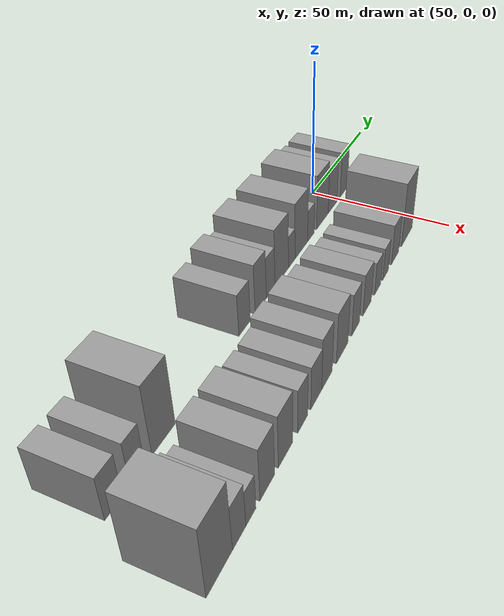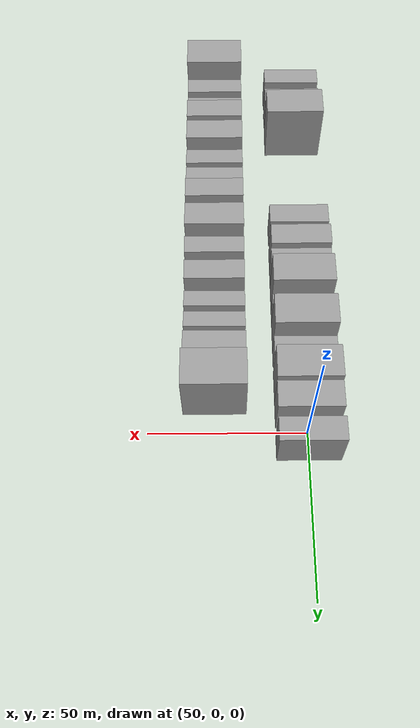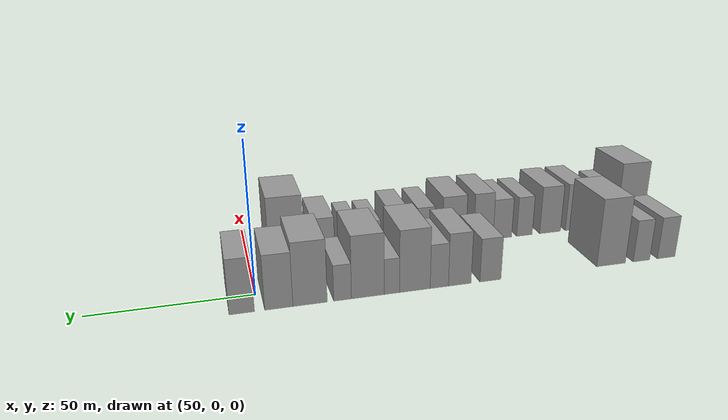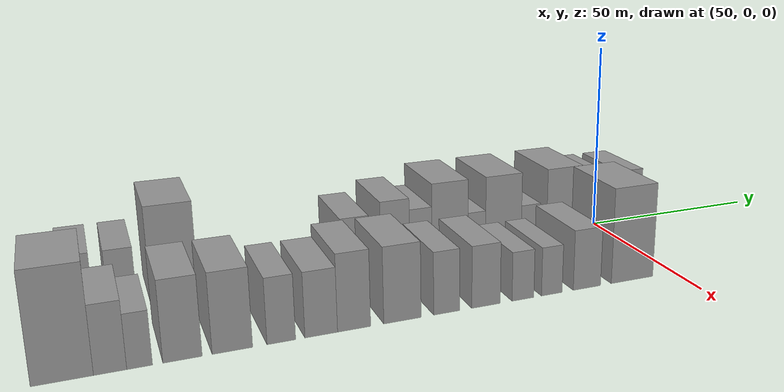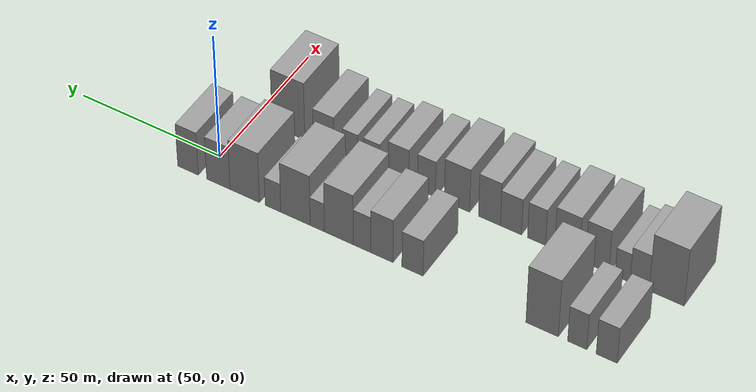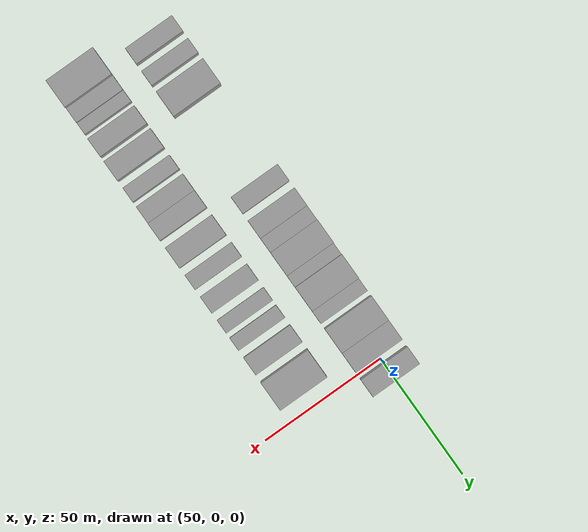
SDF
<sdf version="1.6">
 <world name="default">
  <model name="building_17">
   <static>1</static>
   <pose>50.0000 -137.5323 0 0.000000 0.000000 0.000000</pose>
   <link name="link">
    <pose>0 0 7.50 0 0 0</pose>
    <collision name="collision"><geometry><box><size>20.0000 6.7847 15.0000</size></box></geometry></collision>
    <visual name="visual">
     <cast_shadows>0</cast_shadows>
     <geometry><box><size>20.0000 6.7847 15.0000</size></box></geometry>
     <material>
      <script>
       <uri>model://grey_wall/materials/scripts</uri>
       <uri>model://grey_wall/materials/textures</uri>
       <name>vrc/grey_wall</name>
      </script>
     </material>
    </visual>
   </link>
  </model>
  <model name="building_18">
   <static>1</static>
   <pose>50.0000 -128.0251 0 0.000000 0.000000 0.000000</pose>
   <link name="link">
    <pose>0 0 7.50 0 0 0</pose>
    <collision name="collision"><geometry><box><size>20.0000 6.2296 15.0000</size></box></geometry></collision>
    <visual name="visual">
     <cast_shadows>0</cast_shadows>
     <geometry><box><size>20.0000 6.2296 15.0000</size></box></geometry>
     <material>
      <script>
       <uri>model://grey_wall/materials/scripts</uri>
       <uri>model://grey_wall/materials/textures</uri>
       <name>vrc/grey_wall</name>
      </script>
     </material>
    </visual>
   </link>
  </model>
  <model name="building_19">
   <static>1</static>
   <pose>50.0000 -116.5922 0 0.000000 0.000000 0.000000</pose>
   <link name="link">
    <pose>0 0 12.00 0 0 0</pose>
    <collision name="collision"><geometry><box><size>20.0000 10.6363 24.0000</size></box></geometry></collision>
    <visual name="visual">
     <cast_shadows>0</cast_shadows>
     <geometry><box><size>20.0000 10.6363 24.0000</size></box></geometry>
     <material>
      <script>
       <uri>model://grey_wall/materials/scripts</uri>
       <uri>model://grey_wall/materials/textures</uri>
       <name>vrc/grey_wall</name>
      </script>
     </material>
    </visual>
   </link>
  </model>
  <model name="building_20">
   <static>1</static>
   <pose>50.0000 -73.4680 0 0.000000 0.000000 0.000000</pose>
   <link name="link">
    <pose>0 0 7.50 0 0 0</pose>
    <collision name="collision"><geometry><box><size>20.0000 7.2040 15.0000</size></box></geometry></collision>
    <visual name="visual">
     <cast_shadows>0</cast_shadows>
     <geometry><box><size>20.0000 7.2040 15.0000</size></box></geometry>
     <material>
      <script>
       <uri>model://grey_wall/materials/scripts</uri>
       <uri>model://grey_wall/materials/textures</uri>
       <name>vrc/grey_wall</name>
      </script>
     </material>
    </visual>
   </link>
  </model>
  <model name="building_21">
   <static>1</static>
   <pose>50.0000 -63.0588 0 0.000000 0.000000 0.000000</pose>
   <link name="link">
    <pose>0 0 9.00 0 0 0</pose>
    <collision name="collision"><geometry><box><size>20.0000 7.6144 18.0000</size></box></geometry></collision>
    <visual name="visual">
     <cast_shadows>0</cast_shadows>
     <geometry><box><size>20.0000 7.6144 18.0000</size></box></geometry>
     <material>
      <script>
       <uri>model://grey_wall/materials/scripts</uri>
       <uri>model://grey_wall/materials/textures</uri>
       <name>vrc/grey_wall</name>
      </script>
     </material>
    </visual>
   </link>
  </model>
  <model name="building_22">
   <static>1</static>
   <pose>50.0000 -56.2513 0 0.000000 0.000000 0.000000</pose>
   <link name="link">
    <pose>0 0 7.50 0 0 0</pose>
    <collision name="collision"><geometry><box><size>20.0000 6.0006 15.0000</size></box></geometry></collision>
    <visual name="visual">
     <cast_shadows>0</cast_shadows>
     <geometry><box><size>20.0000 6.0006 15.0000</size></box></geometry>
     <material>
      <script>
       <uri>model://grey_wall/materials/scripts</uri>
       <uri>model://grey_wall/materials/textures</uri>
       <name>vrc/grey_wall</name>
      </script>
     </material>
    </visual>
   </link>
  </model>
  <model name="building_23">
   <static>1</static>
   <pose>50.0000 -48.2686 0 0.000000 0.000000 0.000000</pose>
   <link name="link">
    <pose>0 0 10.50 0 0 0</pose>
    <collision name="collision"><geometry><box><size>20.0000 9.9647 21.0000</size></box></geometry></collision>
    <visual name="visual">
     <cast_shadows>0</cast_shadows>
     <geometry><box><size>20.0000 9.9647 21.0000</size></box></geometry>
     <material>
      <script>
       <uri>model://grey_wall/materials/scripts</uri>
       <uri>model://grey_wall/materials/textures</uri>
       <name>vrc/grey_wall</name>
      </script>
     </material>
    </visual>
   </link>
  </model>
  <model name="building_24">
   <static>1</static>
   <pose>50.0000 -40.8244 0 0.000000 0.000000 0.000000</pose>
   <link name="link">
    <pose>0 0 6.00 0 0 0</pose>
    <collision name="collision"><geometry><box><size>20.0000 4.9237 12.0000</size></box></geometry></collision>
    <visual name="visual">
     <cast_shadows>0</cast_shadows>
     <geometry><box><size>20.0000 4.9237 12.0000</size></box></geometry>
     <material>
      <script>
       <uri>model://grey_wall/materials/scripts</uri>
       <uri>model://grey_wall/materials/textures</uri>
       <name>vrc/grey_wall</name>
      </script>
     </material>
    </visual>
   </link>
  </model>
  <model name="building_25">
   <static>1</static>
   <pose>50.0000 -33.2198 0 0.000000 0.000000 0.000000</pose>
   <link name="link">
    <pose>0 0 10.50 0 0 0</pose>
    <collision name="collision"><geometry><box><size>20.0000 10.2856 21.0000</size></box></geometry></collision>
    <visual name="visual">
     <cast_shadows>0</cast_shadows>
     <geometry><box><size>20.0000 10.2856 21.0000</size></box></geometry>
     <material>
      <script>
       <uri>model://grey_wall/materials/scripts</uri>
       <uri>model://grey_wall/materials/textures</uri>
       <name>vrc/grey_wall</name>
      </script>
     </material>
    </visual>
   </link>
  </model>
  <model name="building_26">
   <static>1</static>
   <pose>50.0000 -25.3277 0 0.000000 0.000000 0.000000</pose>
   <link name="link">
    <pose>0 0 6.00 0 0 0</pose>
    <collision name="collision"><geometry><box><size>20.0000 5.4986 12.0000</size></box></geometry></collision>
    <visual name="visual">
     <cast_shadows>0</cast_shadows>
     <geometry><box><size>20.0000 5.4986 12.0000</size></box></geometry>
     <material>
      <script>
       <uri>model://grey_wall/materials/scripts</uri>
       <uri>model://grey_wall/materials/textures</uri>
       <name>vrc/grey_wall</name>
      </script>
     </material>
    </visual>
   </link>
  </model>
  <model name="building_27">
   <static>1</static>
   <pose>50.0000 -15.3713 0 0.000000 0.000000 0.000000</pose>
   <link name="link">
    <pose>0 0 10.50 0 0 0</pose>
    <collision name="collision"><geometry><box><size>20.0000 10.4143 21.0000</size></box></geometry></collision>
    <visual name="visual">
     <cast_shadows>0</cast_shadows>
     <geometry><box><size>20.0000 10.4143 21.0000</size></box></geometry>
     <material>
      <script>
       <uri>model://grey_wall/materials/scripts</uri>
       <uri>model://grey_wall/materials/textures</uri>
       <name>vrc/grey_wall</name>
      </script>
     </material>
    </visual>
   </link>
  </model>
  <model name="building_28">
   <static>1</static>
   <pose>50.0000 -5.9716 0 0.000000 0.000000 0.000000</pose>
   <link name="link">
    <pose>0 0 9.00 0 0 0</pose>
    <collision name="collision"><geometry><box><size>20.0000 8.3850 18.0000</size></box></geometry></collision>
    <visual name="visual">
     <cast_shadows>0</cast_shadows>
     <geometry><box><size>20.0000 8.3850 18.0000</size></box></geometry>
     <material>
      <script>
       <uri>model://grey_wall/materials/scripts</uri>
       <uri>model://grey_wall/materials/textures</uri>
       <name>vrc/grey_wall</name>
      </script>
     </material>
    </visual>
   </link>
  </model>
  <model name="building_29">
   <static>1</static>
   <pose>50.0000 4.9267 0 0.000000 0.000000 0.000000</pose>
   <link name="link">
    <pose>0 0 9.00 0 0 0</pose>
    <collision name="collision"><geometry><box><size>20.0000 7.4116 18.0000</size></box></geometry></collision>
    <visual name="visual">
     <cast_shadows>0</cast_shadows>
     <geometry><box><size>20.0000 7.4116 18.0000</size></box></geometry>
     <material>
      <script>
       <uri>model://grey_wall/materials/scripts</uri>
       <uri>model://grey_wall/materials/textures</uri>
       <name>vrc/grey_wall</name>
      </script>
     </material>
    </visual>
   </link>
  </model>
  <model name="building_71">
   <static>1</static>
   <pose>79.0000 -141.5311 0 0.000000 0.000000 0.000000</pose>
   <link name="link">
    <pose>0 0 12.00 0 0 0</pose>
    <collision name="collision"><geometry><box><size>20.0000 11.4328 24.0000</size></box></geometry></collision>
    <visual name="visual">
     <cast_shadows>0</cast_shadows>
     <geometry><box><size>20.0000 11.4328 24.0000</size></box></geometry>
     <material>
      <script>
       <uri>model://grey_wall/materials/scripts</uri>
       <uri>model://grey_wall/materials/textures</uri>
       <name>vrc/grey_wall</name>
      </script>
     </material>
    </visual>
   </link>
  </model>
  <model name="building_72">
   <static>1</static>
   <pose>79.0000 -132.7024 0 0.000000 0.000000 0.000000</pose>
   <link name="link">
    <pose>0 0 7.50 0 0 0</pose>
    <collision name="collision"><geometry><box><size>20.0000 6.2246 15.0000</size></box></geometry></collision>
    <visual name="visual">
     <cast_shadows>0</cast_shadows>
     <geometry><box><size>20.0000 6.2246 15.0000</size></box></geometry>
     <material>
      <script>
       <uri>model://grey_wall/materials/scripts</uri>
       <uri>model://grey_wall/materials/textures</uri>
       <name>vrc/grey_wall</name>
      </script>
     </material>
    </visual>
   </link>
  </model>
  <model name="building_73">
   <static>1</static>
   <pose>79.0000 -127.1295 0 0.000000 0.000000 0.000000</pose>
   <link name="link">
    <pose>0 0 6.00 0 0 0</pose>
    <collision name="collision"><geometry><box><size>20.0000 4.9212 12.0000</size></box></geometry></collision>
    <visual name="visual">
     <cast_shadows>0</cast_shadows>
     <geometry><box><size>20.0000 4.9212 12.0000</size></box></geometry>
     <material>
      <script>
       <uri>model://grey_wall/materials/scripts</uri>
       <uri>model://grey_wall/materials/textures</uri>
       <name>vrc/grey_wall</name>
      </script>
     </material>
    </visual>
   </link>
  </model>
  <model name="building_74">
   <static>1</static>
   <pose>79.0000 -118.7900 0 0.000000 0.000000 0.000000</pose>
   <link name="link">
    <pose>0 0 9.00 0 0 0</pose>
    <collision name="collision"><geometry><box><size>20.0000 7.7578 18.0000</size></box></geometry></collision>
    <visual name="visual">
     <cast_shadows>0</cast_shadows>
     <geometry><box><size>20.0000 7.7578 18.0000</size></box></geometry>
     <material>
      <script>
       <uri>model://grey_wall/materials/scripts</uri>
       <uri>model://grey_wall/materials/textures</uri>
       <name>vrc/grey_wall</name>
      </script>
     </material>
    </visual>
   </link>
  </model>
  <model name="building_75">
   <static>1</static>
   <pose>79.0000 -108.7660 0 0.000000 0.000000 0.000000</pose>
   <link name="link">
    <pose>0 0 9.00 0 0 0</pose>
    <collision name="collision"><geometry><box><size>20.0000 8.2902 18.0000</size></box></geometry></collision>
    <visual name="visual">
     <cast_shadows>0</cast_shadows>
     <geometry><box><size>20.0000 8.2902 18.0000</size></box></geometry>
     <material>
      <script>
       <uri>model://grey_wall/materials/scripts</uri>
       <uri>model://grey_wall/materials/textures</uri>
       <name>vrc/grey_wall</name>
      </script>
     </material>
    </visual>
   </link>
  </model>
  <model name="building_76">
   <static>1</static>
   <pose>79.0000 -98.5767 0 0.000000 0.000000 0.000000</pose>
   <link name="link">
    <pose>0 0 7.50 0 0 0</pose>
    <collision name="collision"><geometry><box><size>20.0000 6.0884 15.0000</size></box></geometry></collision>
    <visual name="visual">
     <cast_shadows>0</cast_shadows>
     <geometry><box><size>20.0000 6.0884 15.0000</size></box></geometry>
     <material>
      <script>
       <uri>model://grey_wall/materials/scripts</uri>
       <uri>model://grey_wall/materials/textures</uri>
       <name>vrc/grey_wall</name>
      </script>
     </material>
    </visual>
   </link>
  </model>
  <model name="building_77">
   <static>1</static>
   <pose>79.0000 -89.9548 0 0.000000 0.000000 0.000000</pose>
   <link name="link">
    <pose>0 0 7.50 0 0 0</pose>
    <collision name="collision"><geometry><box><size>20.0000 7.1555 15.0000</size></box></geometry></collision>
    <visual name="visual">
     <cast_shadows>0</cast_shadows>
     <geometry><box><size>20.0000 7.1555 15.0000</size></box></geometry>
     <material>
      <script>
       <uri>model://grey_wall/materials/scripts</uri>
       <uri>model://grey_wall/materials/textures</uri>
       <name>vrc/grey_wall</name>
      </script>
     </material>
    </visual>
   </link>
  </model>
  <model name="building_78">
   <static>1</static>
   <pose>79.0000 -82.6482 0 0.000000 0.000000 0.000000</pose>
   <link name="link">
    <pose>0 0 9.00 0 0 0</pose>
    <collision name="collision"><geometry><box><size>20.0000 7.4578 18.0000</size></box></geometry></collision>
    <visual name="visual">
     <cast_shadows>0</cast_shadows>
     <geometry><box><size>20.0000 7.4578 18.0000</size></box></geometry>
     <material>
      <script>
       <uri>model://grey_wall/materials/scripts</uri>
       <uri>model://grey_wall/materials/textures</uri>
       <name>vrc/grey_wall</name>
      </script>
     </material>
    </visual>
   </link>
  </model>
  <model name="building_79">
   <static>1</static>
   <pose>79.0000 -71.5489 0 0.000000 0.000000 0.000000</pose>
   <link name="link">
    <pose>0 0 9.00 0 0 0</pose>
    <collision name="collision"><geometry><box><size>20.0000 8.7408 18.0000</size></box></geometry></collision>
    <visual name="visual">
     <cast_shadows>0</cast_shadows>
     <geometry><box><size>20.0000 8.7408 18.0000</size></box></geometry>
     <material>
      <script>
       <uri>model://grey_wall/materials/scripts</uri>
       <uri>model://grey_wall/materials/textures</uri>
       <name>vrc/grey_wall</name>
      </script>
     </material>
    </visual>
   </link>
  </model>
  <model name="building_80">
   <static>1</static>
   <pose>79.0000 -61.0324 0 0.000000 0.000000 0.000000</pose>
   <link name="link">
    <pose>0 0 7.50 0 0 0</pose>
    <collision name="collision"><geometry><box><size>20.0000 6.2921 15.0000</size></box></geometry></collision>
    <visual name="visual">
     <cast_shadows>0</cast_shadows>
     <geometry><box><size>20.0000 6.2921 15.0000</size></box></geometry>
     <material>
      <script>
       <uri>model://grey_wall/materials/scripts</uri>
       <uri>model://grey_wall/materials/textures</uri>
       <name>vrc/grey_wall</name>
      </script>
     </material>
    </visual>
   </link>
  </model>
  <model name="building_81">
   <static>1</static>
   <pose>79.0000 -51.3157 0 0.000000 0.000000 0.000000</pose>
   <link name="link">
    <pose>0 0 7.50 0 0 0</pose>
    <collision name="collision"><geometry><box><size>20.0000 7.1412 15.0000</size></box></geometry></collision>
    <visual name="visual">
     <cast_shadows>0</cast_shadows>
     <geometry><box><size>20.0000 7.1412 15.0000</size></box></geometry>
     <material>
      <script>
       <uri>model://grey_wall/materials/scripts</uri>
       <uri>model://grey_wall/materials/textures</uri>
       <name>vrc/grey_wall</name>
      </script>
     </material>
    </visual>
   </link>
  </model>
  <model name="building_82">
   <static>1</static>
   <pose>79.0000 -41.9321 0 0.000000 0.000000 0.000000</pose>
   <link name="link">
    <pose>0 0 6.00 0 0 0</pose>
    <collision name="collision"><geometry><box><size>20.0000 5.6260 12.0000</size></box></geometry></collision>
    <visual name="visual">
     <cast_shadows>0</cast_shadows>
     <geometry><box><size>20.0000 5.6260 12.0000</size></box></geometry>
     <material>
      <script>
       <uri>model://grey_wall/materials/scripts</uri>
       <uri>model://grey_wall/materials/textures</uri>
       <name>vrc/grey_wall</name>
      </script>
     </material>
    </visual>
   </link>
  </model>
  <model name="building_83">
   <static>1</static>
   <pose>79.0000 -34.3874 0 0.000000 0.000000 0.000000</pose>
   <link name="link">
    <pose>0 0 6.00 0 0 0</pose>
    <collision name="collision"><geometry><box><size>20.0000 5.4634 12.0000</size></box></geometry></collision>
    <visual name="visual">
     <cast_shadows>0</cast_shadows>
     <geometry><box><size>20.0000 5.4634 12.0000</size></box></geometry>
     <material>
      <script>
       <uri>model://grey_wall/materials/scripts</uri>
       <uri>model://grey_wall/materials/textures</uri>
       <name>vrc/grey_wall</name>
      </script>
     </material>
    </visual>
   </link>
  </model>
  <model name="building_84">
   <static>1</static>
   <pose>79.0000 -24.9360 0 0.000000 0.000000 0.000000</pose>
   <link name="link">
    <pose>0 0 7.50 0 0 0</pose>
    <collision name="collision"><geometry><box><size>20.0000 7.4394 15.0000</size></box></geometry></collision>
    <visual name="visual">
     <cast_shadows>0</cast_shadows>
     <geometry><box><size>20.0000 7.4394 15.0000</size></box></geometry>
     <material>
      <script>
       <uri>model://grey_wall/materials/scripts</uri>
       <uri>model://grey_wall/materials/textures</uri>
       <name>vrc/grey_wall</name>
      </script>
     </material>
    </visual>
   </link>
  </model>
  <model name="building_85">
   <static>1</static>
   <pose>79.0000 -12.3335 0 0.000000 0.000000 0.000000</pose>
   <link name="link">
    <pose>0 0 12.00 0 0 0</pose>
    <collision name="collision"><geometry><box><size>20.0000 11.7656 24.0000</size></box></geometry></collision>
    <visual name="visual">
     <cast_shadows>0</cast_shadows>
     <geometry><box><size>20.0000 11.7656 24.0000</size></box></geometry>
     <material>
      <script>
       <uri>model://grey_wall/materials/scripts</uri>
       <uri>model://grey_wall/materials/textures</uri>
       <name>vrc/grey_wall</name>
      </script>
     </material>
    </visual>
   </link>
  </model>
 </world>
</sdf>
